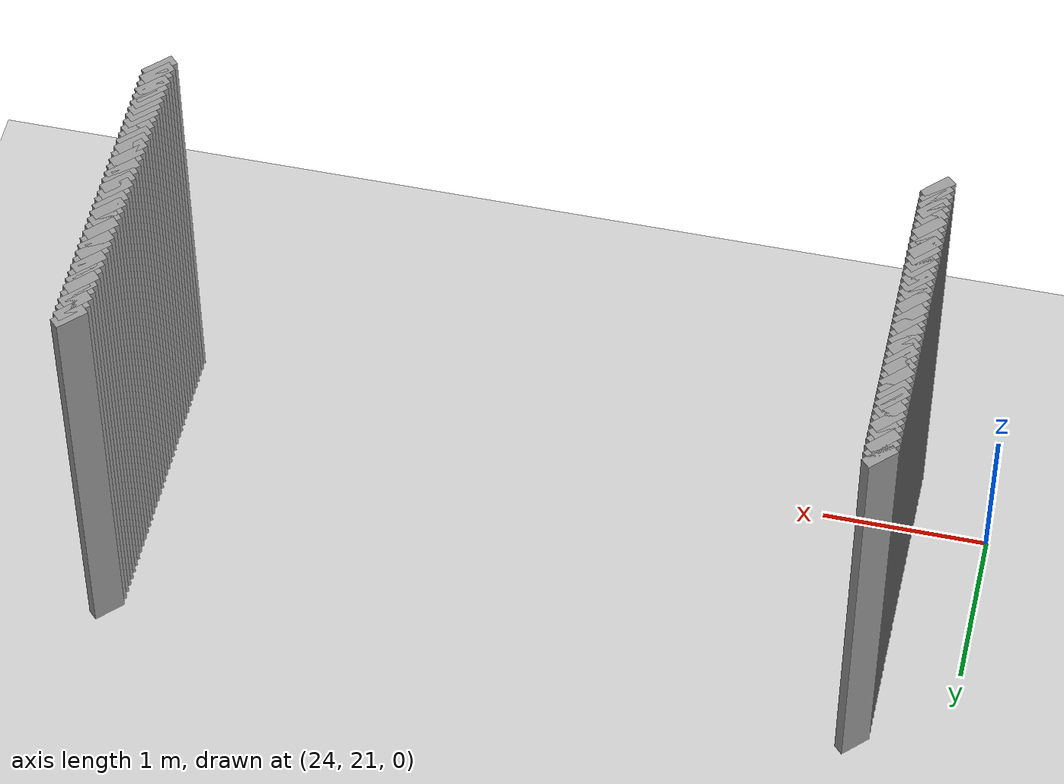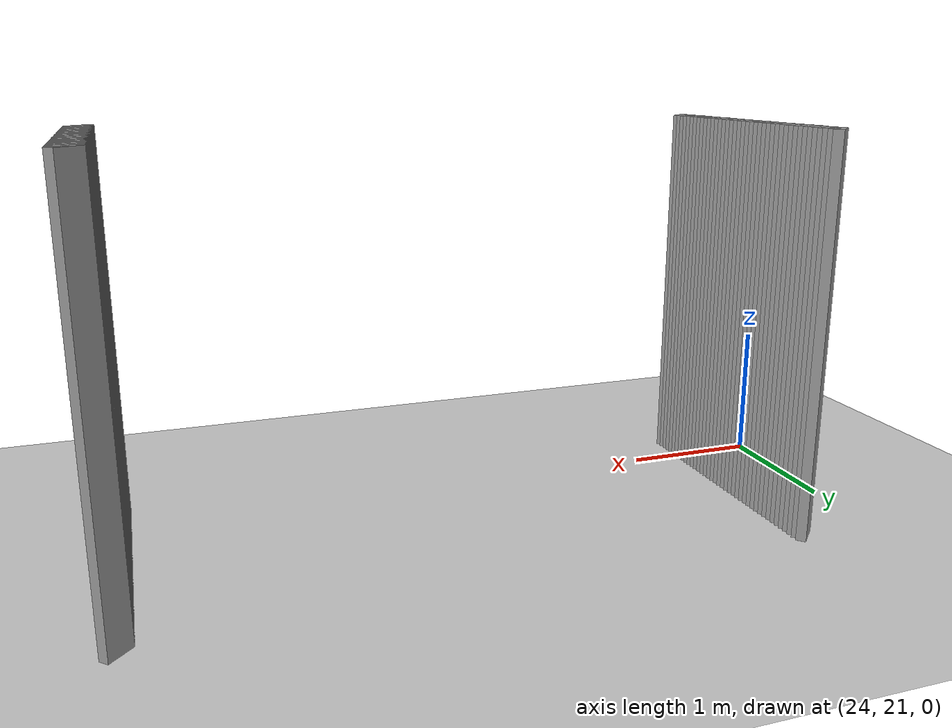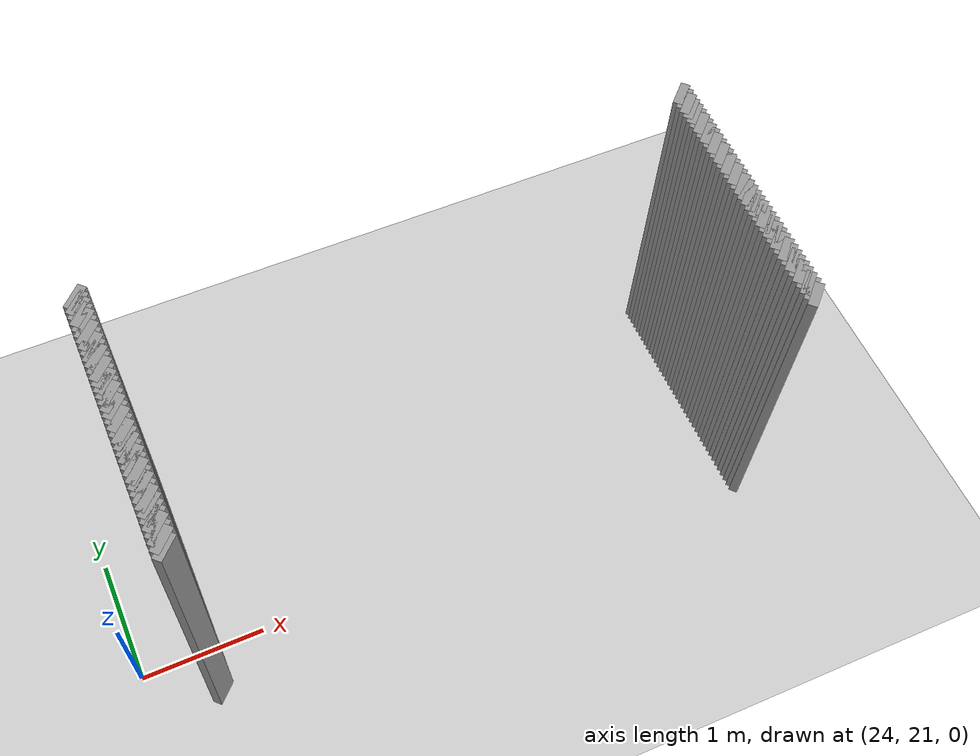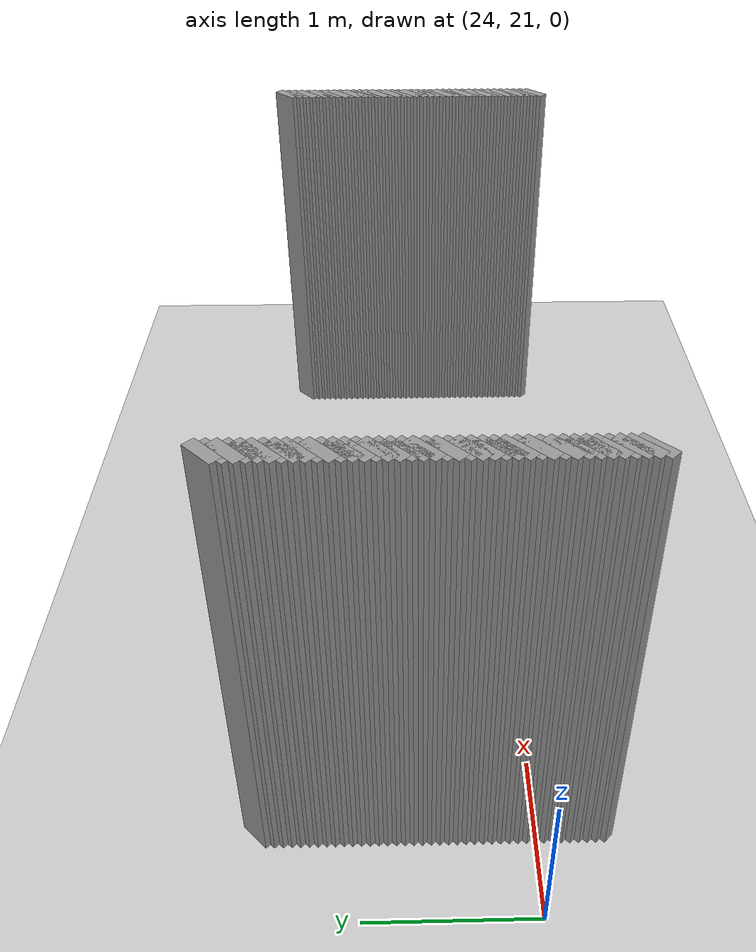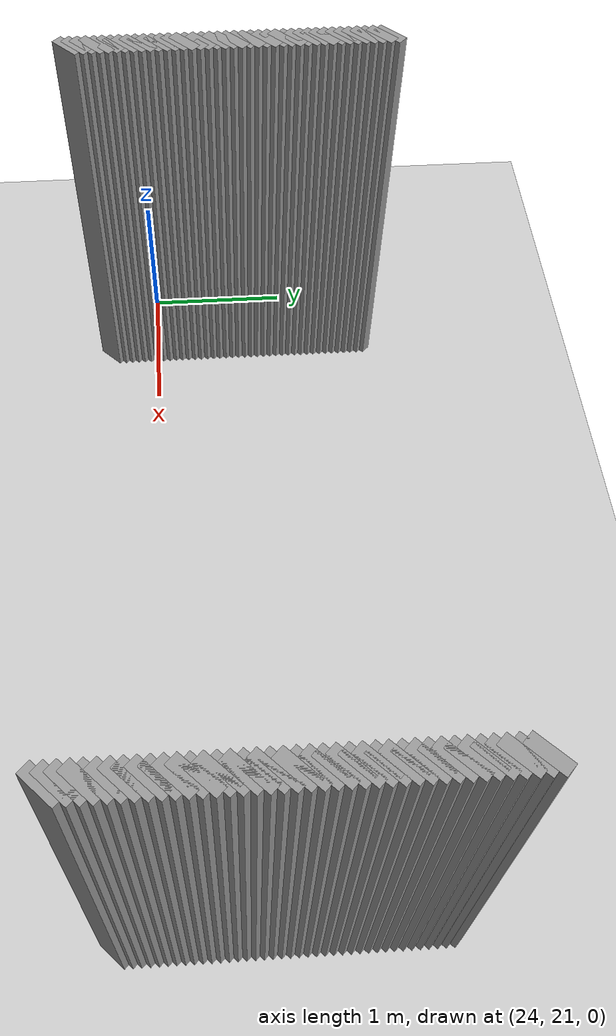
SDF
<sdf version="1.5">
 <world name="default">
  <include><uri>model://ground_plane</uri></include>
  <include><uri>model://sun</uri></include>
  <model name="grey_wall_159">
   <static>1</static>
   <link name="link">
    <pose>24.55 22.6  1.4 0 0 -0.785398163397</pose>
    <collision name="collision"><geometry><box><size>0.0707106781187 .2  2.8</size></box></geometry></collision>
    <visual name="visual">
     <cast_shadows>0</cast_shadows>
     <geometry><box><size>0.0707106781187 .2  2.8</size></box></geometry>
     <material>
      <script>
       <uri>model://grey_wall/materials/scripts</uri>
       <uri>model://grey_wall/materials/textures</uri>
       <name>vrc/grey_wall</name>
      </script>
     </material>
    </visual>
   </link>
  </model>
  <model name="grey_wall_160">
   <static>1</static>
   <link name="link">
    <pose>29.1 22.6  1.4 0 0 -0.785398163397</pose>
    <collision name="collision"><geometry><box><size>0.0707106781187 .2  2.8</size></box></geometry></collision>
    <visual name="visual">
     <cast_shadows>0</cast_shadows>
     <geometry><box><size>0.0707106781187 .2  2.8</size></box></geometry>
     <material>
      <script>
       <uri>model://grey_wall/materials/scripts</uri>
       <uri>model://grey_wall/materials/textures</uri>
       <name>vrc/grey_wall</name>
      </script>
     </material>
    </visual>
   </link>
  </model>
  <model name="grey_wall_161">
   <static>1</static>
   <link name="link">
    <pose>24.55 22.55  1.4 0 0 -0.785398163397</pose>
    <collision name="collision"><geometry><box><size>0.0707106781187 .2  2.8</size></box></geometry></collision>
    <visual name="visual">
     <cast_shadows>0</cast_shadows>
     <geometry><box><size>0.0707106781187 .2  2.8</size></box></geometry>
     <material>
      <script>
       <uri>model://grey_wall/materials/scripts</uri>
       <uri>model://grey_wall/materials/textures</uri>
       <name>vrc/grey_wall</name>
      </script>
     </material>
    </visual>
   </link>
  </model>
  <model name="grey_wall_162">
   <static>1</static>
   <link name="link">
    <pose>29.1 22.55  1.4 0 0 -0.785398163397</pose>
    <collision name="collision"><geometry><box><size>0.0707106781187 .2  2.8</size></box></geometry></collision>
    <visual name="visual">
     <cast_shadows>0</cast_shadows>
     <geometry><box><size>0.0707106781187 .2  2.8</size></box></geometry>
     <material>
      <script>
       <uri>model://grey_wall/materials/scripts</uri>
       <uri>model://grey_wall/materials/textures</uri>
       <name>vrc/grey_wall</name>
      </script>
     </material>
    </visual>
   </link>
  </model>
  <model name="grey_wall_163">
   <static>1</static>
   <link name="link">
    <pose>24.55 22.5  1.4 0 0 -0.785398163397</pose>
    <collision name="collision"><geometry><box><size>0.0707106781187 .2  2.8</size></box></geometry></collision>
    <visual name="visual">
     <cast_shadows>0</cast_shadows>
     <geometry><box><size>0.0707106781187 .2  2.8</size></box></geometry>
     <material>
      <script>
       <uri>model://grey_wall/materials/scripts</uri>
       <uri>model://grey_wall/materials/textures</uri>
       <name>vrc/grey_wall</name>
      </script>
     </material>
    </visual>
   </link>
  </model>
  <model name="grey_wall_164">
   <static>1</static>
   <link name="link">
    <pose>29.1 22.5  1.4 0 0 -0.785398163397</pose>
    <collision name="collision"><geometry><box><size>0.0707106781187 .2  2.8</size></box></geometry></collision>
    <visual name="visual">
     <cast_shadows>0</cast_shadows>
     <geometry><box><size>0.0707106781187 .2  2.8</size></box></geometry>
     <material>
      <script>
       <uri>model://grey_wall/materials/scripts</uri>
       <uri>model://grey_wall/materials/textures</uri>
       <name>vrc/grey_wall</name>
      </script>
     </material>
    </visual>
   </link>
  </model>
  <model name="grey_wall_165">
   <static>1</static>
   <link name="link">
    <pose>24.55 22.45  1.4 0 0 -0.785398163397</pose>
    <collision name="collision"><geometry><box><size>0.0707106781187 .2  2.8</size></box></geometry></collision>
    <visual name="visual">
     <cast_shadows>0</cast_shadows>
     <geometry><box><size>0.0707106781187 .2  2.8</size></box></geometry>
     <material>
      <script>
       <uri>model://grey_wall/materials/scripts</uri>
       <uri>model://grey_wall/materials/textures</uri>
       <name>vrc/grey_wall</name>
      </script>
     </material>
    </visual>
   </link>
  </model>
  <model name="grey_wall_166">
   <static>1</static>
   <link name="link">
    <pose>29.1 22.45  1.4 0 0 -0.785398163397</pose>
    <collision name="collision"><geometry><box><size>0.0707106781187 .2  2.8</size></box></geometry></collision>
    <visual name="visual">
     <cast_shadows>0</cast_shadows>
     <geometry><box><size>0.0707106781187 .2  2.8</size></box></geometry>
     <material>
      <script>
       <uri>model://grey_wall/materials/scripts</uri>
       <uri>model://grey_wall/materials/textures</uri>
       <name>vrc/grey_wall</name>
      </script>
     </material>
    </visual>
   </link>
  </model>
  <model name="grey_wall_167">
   <static>1</static>
   <link name="link">
    <pose>24.55 22.4  1.4 0 0 -0.785398163397</pose>
    <collision name="collision"><geometry><box><size>0.0707106781187 .2  2.8</size></box></geometry></collision>
    <visual name="visual">
     <cast_shadows>0</cast_shadows>
     <geometry><box><size>0.0707106781187 .2  2.8</size></box></geometry>
     <material>
      <script>
       <uri>model://grey_wall/materials/scripts</uri>
       <uri>model://grey_wall/materials/textures</uri>
       <name>vrc/grey_wall</name>
      </script>
     </material>
    </visual>
   </link>
  </model>
  <model name="grey_wall_168">
   <static>1</static>
   <link name="link">
    <pose>29.1 22.4  1.4 0 0 -0.785398163397</pose>
    <collision name="collision"><geometry><box><size>0.0707106781187 .2  2.8</size></box></geometry></collision>
    <visual name="visual">
     <cast_shadows>0</cast_shadows>
     <geometry><box><size>0.0707106781187 .2  2.8</size></box></geometry>
     <material>
      <script>
       <uri>model://grey_wall/materials/scripts</uri>
       <uri>model://grey_wall/materials/textures</uri>
       <name>vrc/grey_wall</name>
      </script>
     </material>
    </visual>
   </link>
  </model>
  <model name="grey_wall_169">
   <static>1</static>
   <link name="link">
    <pose>24.55 22.35  1.4 0 0 -0.785398163397</pose>
    <collision name="collision"><geometry><box><size>0.0707106781187 .2  2.8</size></box></geometry></collision>
    <visual name="visual">
     <cast_shadows>0</cast_shadows>
     <geometry><box><size>0.0707106781187 .2  2.8</size></box></geometry>
     <material>
      <script>
       <uri>model://grey_wall/materials/scripts</uri>
       <uri>model://grey_wall/materials/textures</uri>
       <name>vrc/grey_wall</name>
      </script>
     </material>
    </visual>
   </link>
  </model>
  <model name="grey_wall_170">
   <static>1</static>
   <link name="link">
    <pose>29.1 22.35  1.4 0 0 -0.785398163397</pose>
    <collision name="collision"><geometry><box><size>0.0707106781187 .2  2.8</size></box></geometry></collision>
    <visual name="visual">
     <cast_shadows>0</cast_shadows>
     <geometry><box><size>0.0707106781187 .2  2.8</size></box></geometry>
     <material>
      <script>
       <uri>model://grey_wall/materials/scripts</uri>
       <uri>model://grey_wall/materials/textures</uri>
       <name>vrc/grey_wall</name>
      </script>
     </material>
    </visual>
   </link>
  </model>
  <model name="grey_wall_171">
   <static>1</static>
   <link name="link">
    <pose>24.55 22.3  1.4 0 0 -0.785398163397</pose>
    <collision name="collision"><geometry><box><size>0.0707106781187 .2  2.8</size></box></geometry></collision>
    <visual name="visual">
     <cast_shadows>0</cast_shadows>
     <geometry><box><size>0.0707106781187 .2  2.8</size></box></geometry>
     <material>
      <script>
       <uri>model://grey_wall/materials/scripts</uri>
       <uri>model://grey_wall/materials/textures</uri>
       <name>vrc/grey_wall</name>
      </script>
     </material>
    </visual>
   </link>
  </model>
  <model name="grey_wall_172">
   <static>1</static>
   <link name="link">
    <pose>29.1 22.3  1.4 0 0 -0.785398163397</pose>
    <collision name="collision"><geometry><box><size>0.0707106781187 .2  2.8</size></box></geometry></collision>
    <visual name="visual">
     <cast_shadows>0</cast_shadows>
     <geometry><box><size>0.0707106781187 .2  2.8</size></box></geometry>
     <material>
      <script>
       <uri>model://grey_wall/materials/scripts</uri>
       <uri>model://grey_wall/materials/textures</uri>
       <name>vrc/grey_wall</name>
      </script>
     </material>
    </visual>
   </link>
  </model>
  <model name="grey_wall_173">
   <static>1</static>
   <link name="link">
    <pose>24.55 22.25  1.4 0 0 -0.785398163397</pose>
    <collision name="collision"><geometry><box><size>0.0707106781187 .2  2.8</size></box></geometry></collision>
    <visual name="visual">
     <cast_shadows>0</cast_shadows>
     <geometry><box><size>0.0707106781187 .2  2.8</size></box></geometry>
     <material>
      <script>
       <uri>model://grey_wall/materials/scripts</uri>
       <uri>model://grey_wall/materials/textures</uri>
       <name>vrc/grey_wall</name>
      </script>
     </material>
    </visual>
   </link>
  </model>
  <model name="grey_wall_174">
   <static>1</static>
   <link name="link">
    <pose>29.1 22.25  1.4 0 0 -0.785398163397</pose>
    <collision name="collision"><geometry><box><size>0.0707106781187 .2  2.8</size></box></geometry></collision>
    <visual name="visual">
     <cast_shadows>0</cast_shadows>
     <geometry><box><size>0.0707106781187 .2  2.8</size></box></geometry>
     <material>
      <script>
       <uri>model://grey_wall/materials/scripts</uri>
       <uri>model://grey_wall/materials/textures</uri>
       <name>vrc/grey_wall</name>
      </script>
     </material>
    </visual>
   </link>
  </model>
  <model name="grey_wall_175">
   <static>1</static>
   <link name="link">
    <pose>24.55 22.2  1.4 0 0 -0.785398163397</pose>
    <collision name="collision"><geometry><box><size>0.0707106781187 .2  2.8</size></box></geometry></collision>
    <visual name="visual">
     <cast_shadows>0</cast_shadows>
     <geometry><box><size>0.0707106781187 .2  2.8</size></box></geometry>
     <material>
      <script>
       <uri>model://grey_wall/materials/scripts</uri>
       <uri>model://grey_wall/materials/textures</uri>
       <name>vrc/grey_wall</name>
      </script>
     </material>
    </visual>
   </link>
  </model>
  <model name="grey_wall_176">
   <static>1</static>
   <link name="link">
    <pose>29.1 22.2  1.4 0 0 -0.785398163397</pose>
    <collision name="collision"><geometry><box><size>0.0707106781187 .2  2.8</size></box></geometry></collision>
    <visual name="visual">
     <cast_shadows>0</cast_shadows>
     <geometry><box><size>0.0707106781187 .2  2.8</size></box></geometry>
     <material>
      <script>
       <uri>model://grey_wall/materials/scripts</uri>
       <uri>model://grey_wall/materials/textures</uri>
       <name>vrc/grey_wall</name>
      </script>
     </material>
    </visual>
   </link>
  </model>
  <model name="grey_wall_177">
   <static>1</static>
   <link name="link">
    <pose>24.55 22.15  1.4 0 0 -0.785398163397</pose>
    <collision name="collision"><geometry><box><size>0.0707106781187 .2  2.8</size></box></geometry></collision>
    <visual name="visual">
     <cast_shadows>0</cast_shadows>
     <geometry><box><size>0.0707106781187 .2  2.8</size></box></geometry>
     <material>
      <script>
       <uri>model://grey_wall/materials/scripts</uri>
       <uri>model://grey_wall/materials/textures</uri>
       <name>vrc/grey_wall</name>
      </script>
     </material>
    </visual>
   </link>
  </model>
  <model name="grey_wall_178">
   <static>1</static>
   <link name="link">
    <pose>29.1 22.15  1.4 0 0 -0.785398163397</pose>
    <collision name="collision"><geometry><box><size>0.0707106781187 .2  2.8</size></box></geometry></collision>
    <visual name="visual">
     <cast_shadows>0</cast_shadows>
     <geometry><box><size>0.0707106781187 .2  2.8</size></box></geometry>
     <material>
      <script>
       <uri>model://grey_wall/materials/scripts</uri>
       <uri>model://grey_wall/materials/textures</uri>
       <name>vrc/grey_wall</name>
      </script>
     </material>
    </visual>
   </link>
  </model>
  <model name="grey_wall_179">
   <static>1</static>
   <link name="link">
    <pose>24.55 22.1  1.4 0 0 -0.785398163397</pose>
    <collision name="collision"><geometry><box><size>0.0707106781187 .2  2.8</size></box></geometry></collision>
    <visual name="visual">
     <cast_shadows>0</cast_shadows>
     <geometry><box><size>0.0707106781187 .2  2.8</size></box></geometry>
     <material>
      <script>
       <uri>model://grey_wall/materials/scripts</uri>
       <uri>model://grey_wall/materials/textures</uri>
       <name>vrc/grey_wall</name>
      </script>
     </material>
    </visual>
   </link>
  </model>
  <model name="grey_wall_180">
   <static>1</static>
   <link name="link">
    <pose>29.1 22.1  1.4 0 0 -0.785398163397</pose>
    <collision name="collision"><geometry><box><size>0.0707106781187 .2  2.8</size></box></geometry></collision>
    <visual name="visual">
     <cast_shadows>0</cast_shadows>
     <geometry><box><size>0.0707106781187 .2  2.8</size></box></geometry>
     <material>
      <script>
       <uri>model://grey_wall/materials/scripts</uri>
       <uri>model://grey_wall/materials/textures</uri>
       <name>vrc/grey_wall</name>
      </script>
     </material>
    </visual>
   </link>
  </model>
  <model name="grey_wall_181">
   <static>1</static>
   <link name="link">
    <pose>24.55 22.05  1.4 0 0 -0.785398163397</pose>
    <collision name="collision"><geometry><box><size>0.0707106781187 .2  2.8</size></box></geometry></collision>
    <visual name="visual">
     <cast_shadows>0</cast_shadows>
     <geometry><box><size>0.0707106781187 .2  2.8</size></box></geometry>
     <material>
      <script>
       <uri>model://grey_wall/materials/scripts</uri>
       <uri>model://grey_wall/materials/textures</uri>
       <name>vrc/grey_wall</name>
      </script>
     </material>
    </visual>
   </link>
  </model>
  <model name="grey_wall_182">
   <static>1</static>
   <link name="link">
    <pose>29.1 22.05  1.4 0 0 -0.785398163397</pose>
    <collision name="collision"><geometry><box><size>0.0707106781187 .2  2.8</size></box></geometry></collision>
    <visual name="visual">
     <cast_shadows>0</cast_shadows>
     <geometry><box><size>0.0707106781187 .2  2.8</size></box></geometry>
     <material>
      <script>
       <uri>model://grey_wall/materials/scripts</uri>
       <uri>model://grey_wall/materials/textures</uri>
       <name>vrc/grey_wall</name>
      </script>
     </material>
    </visual>
   </link>
  </model>
  <model name="grey_wall_183">
   <static>1</static>
   <link name="link">
    <pose>24.55 22.0  1.4 0 0 -0.785398163397</pose>
    <collision name="collision"><geometry><box><size>0.0707106781187 .2  2.8</size></box></geometry></collision>
    <visual name="visual">
     <cast_shadows>0</cast_shadows>
     <geometry><box><size>0.0707106781187 .2  2.8</size></box></geometry>
     <material>
      <script>
       <uri>model://grey_wall/materials/scripts</uri>
       <uri>model://grey_wall/materials/textures</uri>
       <name>vrc/grey_wall</name>
      </script>
     </material>
    </visual>
   </link>
  </model>
  <model name="grey_wall_184">
   <static>1</static>
   <link name="link">
    <pose>29.1 22.0  1.4 0 0 -0.785398163397</pose>
    <collision name="collision"><geometry><box><size>0.0707106781187 .2  2.8</size></box></geometry></collision>
    <visual name="visual">
     <cast_shadows>0</cast_shadows>
     <geometry><box><size>0.0707106781187 .2  2.8</size></box></geometry>
     <material>
      <script>
       <uri>model://grey_wall/materials/scripts</uri>
       <uri>model://grey_wall/materials/textures</uri>
       <name>vrc/grey_wall</name>
      </script>
     </material>
    </visual>
   </link>
  </model>
  <model name="grey_wall_185">
   <static>1</static>
   <link name="link">
    <pose>24.55 21.95  1.4 0 0 -0.785398163397</pose>
    <collision name="collision"><geometry><box><size>0.0707106781187 .2  2.8</size></box></geometry></collision>
    <visual name="visual">
     <cast_shadows>0</cast_shadows>
     <geometry><box><size>0.0707106781187 .2  2.8</size></box></geometry>
     <material>
      <script>
       <uri>model://grey_wall/materials/scripts</uri>
       <uri>model://grey_wall/materials/textures</uri>
       <name>vrc/grey_wall</name>
      </script>
     </material>
    </visual>
   </link>
  </model>
  <model name="grey_wall_186">
   <static>1</static>
   <link name="link">
    <pose>29.1 21.95  1.4 0 0 -0.785398163397</pose>
    <collision name="collision"><geometry><box><size>0.0707106781187 .2  2.8</size></box></geometry></collision>
    <visual name="visual">
     <cast_shadows>0</cast_shadows>
     <geometry><box><size>0.0707106781187 .2  2.8</size></box></geometry>
     <material>
      <script>
       <uri>model://grey_wall/materials/scripts</uri>
       <uri>model://grey_wall/materials/textures</uri>
       <name>vrc/grey_wall</name>
      </script>
     </material>
    </visual>
   </link>
  </model>
  <model name="grey_wall_187">
   <static>1</static>
   <link name="link">
    <pose>24.55 21.9  1.4 0 0 -0.785398163397</pose>
    <collision name="collision"><geometry><box><size>0.0707106781187 .2  2.8</size></box></geometry></collision>
    <visual name="visual">
     <cast_shadows>0</cast_shadows>
     <geometry><box><size>0.0707106781187 .2  2.8</size></box></geometry>
     <material>
      <script>
       <uri>model://grey_wall/materials/scripts</uri>
       <uri>model://grey_wall/materials/textures</uri>
       <name>vrc/grey_wall</name>
      </script>
     </material>
    </visual>
   </link>
  </model>
  <model name="grey_wall_188">
   <static>1</static>
   <link name="link">
    <pose>29.1 21.9  1.4 0 0 -0.785398163397</pose>
    <collision name="collision"><geometry><box><size>0.0707106781187 .2  2.8</size></box></geometry></collision>
    <visual name="visual">
     <cast_shadows>0</cast_shadows>
     <geometry><box><size>0.0707106781187 .2  2.8</size></box></geometry>
     <material>
      <script>
       <uri>model://grey_wall/materials/scripts</uri>
       <uri>model://grey_wall/materials/textures</uri>
       <name>vrc/grey_wall</name>
      </script>
     </material>
    </visual>
   </link>
  </model>
  <model name="grey_wall_189">
   <static>1</static>
   <link name="link">
    <pose>24.55 21.85  1.4 0 0 -0.785398163397</pose>
    <collision name="collision"><geometry><box><size>0.0707106781187 .2  2.8</size></box></geometry></collision>
    <visual name="visual">
     <cast_shadows>0</cast_shadows>
     <geometry><box><size>0.0707106781187 .2  2.8</size></box></geometry>
     <material>
      <script>
       <uri>model://grey_wall/materials/scripts</uri>
       <uri>model://grey_wall/materials/textures</uri>
       <name>vrc/grey_wall</name>
      </script>
     </material>
    </visual>
   </link>
  </model>
  <model name="grey_wall_190">
   <static>1</static>
   <link name="link">
    <pose>29.1 21.85  1.4 0 0 -0.785398163397</pose>
    <collision name="collision"><geometry><box><size>0.0707106781187 .2  2.8</size></box></geometry></collision>
    <visual name="visual">
     <cast_shadows>0</cast_shadows>
     <geometry><box><size>0.0707106781187 .2  2.8</size></box></geometry>
     <material>
      <script>
       <uri>model://grey_wall/materials/scripts</uri>
       <uri>model://grey_wall/materials/textures</uri>
       <name>vrc/grey_wall</name>
      </script>
     </material>
    </visual>
   </link>
  </model>
  <model name="grey_wall_191">
   <static>1</static>
   <link name="link">
    <pose>24.55 21.8  1.4 0 0 -0.785398163397</pose>
    <collision name="collision"><geometry><box><size>0.0707106781187 .2  2.8</size></box></geometry></collision>
    <visual name="visual">
     <cast_shadows>0</cast_shadows>
     <geometry><box><size>0.0707106781187 .2  2.8</size></box></geometry>
     <material>
      <script>
       <uri>model://grey_wall/materials/scripts</uri>
       <uri>model://grey_wall/materials/textures</uri>
       <name>vrc/grey_wall</name>
      </script>
     </material>
    </visual>
   </link>
  </model>
  <model name="grey_wall_192">
   <static>1</static>
   <link name="link">
    <pose>29.1 21.8  1.4 0 0 -0.785398163397</pose>
    <collision name="collision"><geometry><box><size>0.0707106781187 .2  2.8</size></box></geometry></collision>
    <visual name="visual">
     <cast_shadows>0</cast_shadows>
     <geometry><box><size>0.0707106781187 .2  2.8</size></box></geometry>
     <material>
      <script>
       <uri>model://grey_wall/materials/scripts</uri>
       <uri>model://grey_wall/materials/textures</uri>
       <name>vrc/grey_wall</name>
      </script>
     </material>
    </visual>
   </link>
  </model>
  <model name="grey_wall_193">
   <static>1</static>
   <link name="link">
    <pose>24.55 21.75  1.4 0 0 -0.785398163397</pose>
    <collision name="collision"><geometry><box><size>0.0707106781187 .2  2.8</size></box></geometry></collision>
    <visual name="visual">
     <cast_shadows>0</cast_shadows>
     <geometry><box><size>0.0707106781187 .2  2.8</size></box></geometry>
     <material>
      <script>
       <uri>model://grey_wall/materials/scripts</uri>
       <uri>model://grey_wall/materials/textures</uri>
       <name>vrc/grey_wall</name>
      </script>
     </material>
    </visual>
   </link>
  </model>
  <model name="grey_wall_194">
   <static>1</static>
   <link name="link">
    <pose>29.1 21.75  1.4 0 0 -0.785398163397</pose>
    <collision name="collision"><geometry><box><size>0.0707106781187 .2  2.8</size></box></geometry></collision>
    <visual name="visual">
     <cast_shadows>0</cast_shadows>
     <geometry><box><size>0.0707106781187 .2  2.8</size></box></geometry>
     <material>
      <script>
       <uri>model://grey_wall/materials/scripts</uri>
       <uri>model://grey_wall/materials/textures</uri>
       <name>vrc/grey_wall</name>
      </script>
     </material>
    </visual>
   </link>
  </model>
  <model name="grey_wall_195">
   <static>1</static>
   <link name="link">
    <pose>24.55 21.7  1.4 0 0 -0.785398163397</pose>
    <collision name="collision"><geometry><box><size>0.0707106781187 .2  2.8</size></box></geometry></collision>
    <visual name="visual">
     <cast_shadows>0</cast_shadows>
     <geometry><box><size>0.0707106781187 .2  2.8</size></box></geometry>
     <material>
      <script>
       <uri>model://grey_wall/materials/scripts</uri>
       <uri>model://grey_wall/materials/textures</uri>
       <name>vrc/grey_wall</name>
      </script>
     </material>
    </visual>
   </link>
  </model>
  <model name="grey_wall_196">
   <static>1</static>
   <link name="link">
    <pose>29.1 21.7  1.4 0 0 -0.785398163397</pose>
    <collision name="collision"><geometry><box><size>0.0707106781187 .2  2.8</size></box></geometry></collision>
    <visual name="visual">
     <cast_shadows>0</cast_shadows>
     <geometry><box><size>0.0707106781187 .2  2.8</size></box></geometry>
     <material>
      <script>
       <uri>model://grey_wall/materials/scripts</uri>
       <uri>model://grey_wall/materials/textures</uri>
       <name>vrc/grey_wall</name>
      </script>
     </material>
    </visual>
   </link>
  </model>
  <model name="grey_wall_197">
   <static>1</static>
   <link name="link">
    <pose>24.55 21.65  1.4 0 0 -0.785398163397</pose>
    <collision name="collision"><geometry><box><size>0.0707106781187 .2  2.8</size></box></geometry></collision>
    <visual name="visual">
     <cast_shadows>0</cast_shadows>
     <geometry><box><size>0.0707106781187 .2  2.8</size></box></geometry>
     <material>
      <script>
       <uri>model://grey_wall/materials/scripts</uri>
       <uri>model://grey_wall/materials/textures</uri>
       <name>vrc/grey_wall</name>
      </script>
     </material>
    </visual>
   </link>
  </model>
  <model name="grey_wall_198">
   <static>1</static>
   <link name="link">
    <pose>29.1 21.65  1.4 0 0 -0.785398163397</pose>
    <collision name="collision"><geometry><box><size>0.0707106781187 .2  2.8</size></box></geometry></collision>
    <visual name="visual">
     <cast_shadows>0</cast_shadows>
     <geometry><box><size>0.0707106781187 .2  2.8</size></box></geometry>
     <material>
      <script>
       <uri>model://grey_wall/materials/scripts</uri>
       <uri>model://grey_wall/materials/textures</uri>
       <name>vrc/grey_wall</name>
      </script>
     </material>
    </visual>
   </link>
  </model>
  <model name="grey_wall_199">
   <static>1</static>
   <link name="link">
    <pose>24.55 21.6  1.4 0 0 -0.785398163397</pose>
    <collision name="collision"><geometry><box><size>0.0707106781187 .2  2.8</size></box></geometry></collision>
    <visual name="visual">
     <cast_shadows>0</cast_shadows>
     <geometry><box><size>0.0707106781187 .2  2.8</size></box></geometry>
     <material>
      <script>
       <uri>model://grey_wall/materials/scripts</uri>
       <uri>model://grey_wall/materials/textures</uri>
       <name>vrc/grey_wall</name>
      </script>
     </material>
    </visual>
   </link>
  </model>
  <model name="grey_wall_200">
   <static>1</static>
   <link name="link">
    <pose>29.1 21.6  1.4 0 0 -0.785398163397</pose>
    <collision name="collision"><geometry><box><size>0.0707106781187 .2  2.8</size></box></geometry></collision>
    <visual name="visual">
     <cast_shadows>0</cast_shadows>
     <geometry><box><size>0.0707106781187 .2  2.8</size></box></geometry>
     <material>
      <script>
       <uri>model://grey_wall/materials/scripts</uri>
       <uri>model://grey_wall/materials/textures</uri>
       <name>vrc/grey_wall</name>
      </script>
     </material>
    </visual>
   </link>
  </model>
  <model name="grey_wall_201">
   <static>1</static>
   <link name="link">
    <pose>24.55 21.55  1.4 0 0 -0.785398163397</pose>
    <collision name="collision"><geometry><box><size>0.0707106781187 .2  2.8</size></box></geometry></collision>
    <visual name="visual">
     <cast_shadows>0</cast_shadows>
     <geometry><box><size>0.0707106781187 .2  2.8</size></box></geometry>
     <material>
      <script>
       <uri>model://grey_wall/materials/scripts</uri>
       <uri>model://grey_wall/materials/textures</uri>
       <name>vrc/grey_wall</name>
      </script>
     </material>
    </visual>
   </link>
  </model>
  <model name="grey_wall_202">
   <static>1</static>
   <link name="link">
    <pose>29.1 21.55  1.4 0 0 -0.785398163397</pose>
    <collision name="collision"><geometry><box><size>0.0707106781187 .2  2.8</size></box></geometry></collision>
    <visual name="visual">
     <cast_shadows>0</cast_shadows>
     <geometry><box><size>0.0707106781187 .2  2.8</size></box></geometry>
     <material>
      <script>
       <uri>model://grey_wall/materials/scripts</uri>
       <uri>model://grey_wall/materials/textures</uri>
       <name>vrc/grey_wall</name>
      </script>
     </material>
    </visual>
   </link>
  </model>
  <model name="grey_wall_203">
   <static>1</static>
   <link name="link">
    <pose>24.55 21.5  1.4 0 0 -0.785398163397</pose>
    <collision name="collision"><geometry><box><size>0.0707106781187 .2  2.8</size></box></geometry></collision>
    <visual name="visual">
     <cast_shadows>0</cast_shadows>
     <geometry><box><size>0.0707106781187 .2  2.8</size></box></geometry>
     <material>
      <script>
       <uri>model://grey_wall/materials/scripts</uri>
       <uri>model://grey_wall/materials/textures</uri>
       <name>vrc/grey_wall</name>
      </script>
     </material>
    </visual>
   </link>
  </model>
  <model name="grey_wall_204">
   <static>1</static>
   <link name="link">
    <pose>29.1 21.5  1.4 0 0 -0.785398163397</pose>
    <collision name="collision"><geometry><box><size>0.0707106781187 .2  2.8</size></box></geometry></collision>
    <visual name="visual">
     <cast_shadows>0</cast_shadows>
     <geometry><box><size>0.0707106781187 .2  2.8</size></box></geometry>
     <material>
      <script>
       <uri>model://grey_wall/materials/scripts</uri>
       <uri>model://grey_wall/materials/textures</uri>
       <name>vrc/grey_wall</name>
      </script>
     </material>
    </visual>
   </link>
  </model>
  <model name="grey_wall_205">
   <static>1</static>
   <link name="link">
    <pose>24.55 21.45  1.4 0 0 -0.785398163397</pose>
    <collision name="collision"><geometry><box><size>0.0707106781187 .2  2.8</size></box></geometry></collision>
    <visual name="visual">
     <cast_shadows>0</cast_shadows>
     <geometry><box><size>0.0707106781187 .2  2.8</size></box></geometry>
     <material>
      <script>
       <uri>model://grey_wall/materials/scripts</uri>
       <uri>model://grey_wall/materials/textures</uri>
       <name>vrc/grey_wall</name>
      </script>
     </material>
    </visual>
   </link>
  </model>
  <model name="grey_wall_206">
   <static>1</static>
   <link name="link">
    <pose>29.1 21.45  1.4 0 0 -0.785398163397</pose>
    <collision name="collision"><geometry><box><size>0.0707106781187 .2  2.8</size></box></geometry></collision>
    <visual name="visual">
     <cast_shadows>0</cast_shadows>
     <geometry><box><size>0.0707106781187 .2  2.8</size></box></geometry>
     <material>
      <script>
       <uri>model://grey_wall/materials/scripts</uri>
       <uri>model://grey_wall/materials/textures</uri>
       <name>vrc/grey_wall</name>
      </script>
     </material>
    </visual>
   </link>
  </model>
  <model name="grey_wall_207">
   <static>1</static>
   <link name="link">
    <pose>24.55 21.4  1.4 0 0 -0.785398163397</pose>
    <collision name="collision"><geometry><box><size>0.0707106781187 .2  2.8</size></box></geometry></collision>
    <visual name="visual">
     <cast_shadows>0</cast_shadows>
     <geometry><box><size>0.0707106781187 .2  2.8</size></box></geometry>
     <material>
      <script>
       <uri>model://grey_wall/materials/scripts</uri>
       <uri>model://grey_wall/materials/textures</uri>
       <name>vrc/grey_wall</name>
      </script>
     </material>
    </visual>
   </link>
  </model>
  <model name="grey_wall_208">
   <static>1</static>
   <link name="link">
    <pose>29.1 21.4  1.4 0 0 -0.785398163397</pose>
    <collision name="collision"><geometry><box><size>0.0707106781187 .2  2.8</size></box></geometry></collision>
    <visual name="visual">
     <cast_shadows>0</cast_shadows>
     <geometry><box><size>0.0707106781187 .2  2.8</size></box></geometry>
     <material>
      <script>
       <uri>model://grey_wall/materials/scripts</uri>
       <uri>model://grey_wall/materials/textures</uri>
       <name>vrc/grey_wall</name>
      </script>
     </material>
    </visual>
   </link>
  </model>
  <model name="grey_wall_209">
   <static>1</static>
   <link name="link">
    <pose>24.55 21.35  1.4 0 0 -0.785398163397</pose>
    <collision name="collision"><geometry><box><size>0.0707106781187 .2  2.8</size></box></geometry></collision>
    <visual name="visual">
     <cast_shadows>0</cast_shadows>
     <geometry><box><size>0.0707106781187 .2  2.8</size></box></geometry>
     <material>
      <script>
       <uri>model://grey_wall/materials/scripts</uri>
       <uri>model://grey_wall/materials/textures</uri>
       <name>vrc/grey_wall</name>
      </script>
     </material>
    </visual>
   </link>
  </model>
  <model name="grey_wall_210">
   <static>1</static>
   <link name="link">
    <pose>29.1 21.35  1.4 0 0 -0.785398163397</pose>
    <collision name="collision"><geometry><box><size>0.0707106781187 .2  2.8</size></box></geometry></collision>
    <visual name="visual">
     <cast_shadows>0</cast_shadows>
     <geometry><box><size>0.0707106781187 .2  2.8</size></box></geometry>
     <material>
      <script>
       <uri>model://grey_wall/materials/scripts</uri>
       <uri>model://grey_wall/materials/textures</uri>
       <name>vrc/grey_wall</name>
      </script>
     </material>
    </visual>
   </link>
  </model>
  <model name="grey_wall_211">
   <static>1</static>
   <link name="link">
    <pose>24.55 21.3  1.4 0 0 -0.785398163397</pose>
    <collision name="collision"><geometry><box><size>0.0707106781187 .2  2.8</size></box></geometry></collision>
    <visual name="visual">
     <cast_shadows>0</cast_shadows>
     <geometry><box><size>0.0707106781187 .2  2.8</size></box></geometry>
     <material>
      <script>
       <uri>model://grey_wall/materials/scripts</uri>
       <uri>model://grey_wall/materials/textures</uri>
       <name>vrc/grey_wall</name>
      </script>
     </material>
    </visual>
   </link>
  </model>
  <model name="grey_wall_212">
   <static>1</static>
   <link name="link">
    <pose>29.1 21.3  1.4 0 0 -0.785398163397</pose>
    <collision name="collision"><geometry><box><size>0.0707106781187 .2  2.8</size></box></geometry></collision>
    <visual name="visual">
     <cast_shadows>0</cast_shadows>
     <geometry><box><size>0.0707106781187 .2  2.8</size></box></geometry>
     <material>
      <script>
       <uri>model://grey_wall/materials/scripts</uri>
       <uri>model://grey_wall/materials/textures</uri>
       <name>vrc/grey_wall</name>
      </script>
     </material>
    </visual>
   </link>
  </model>
  <model name="grey_wall_213">
   <static>1</static>
   <link name="link">
    <pose>24.55 21.25  1.4 0 0 -0.785398163397</pose>
    <collision name="collision"><geometry><box><size>0.0707106781187 .2  2.8</size></box></geometry></collision>
    <visual name="visual">
     <cast_shadows>0</cast_shadows>
     <geometry><box><size>0.0707106781187 .2  2.8</size></box></geometry>
     <material>
      <script>
       <uri>model://grey_wall/materials/scripts</uri>
       <uri>model://grey_wall/materials/textures</uri>
       <name>vrc/grey_wall</name>
      </script>
     </material>
    </visual>
   </link>
  </model>
  <model name="grey_wall_214">
   <static>1</static>
   <link name="link">
    <pose>29.1 21.25  1.4 0 0 -0.785398163397</pose>
    <collision name="collision"><geometry><box><size>0.0707106781187 .2  2.8</size></box></geometry></collision>
    <visual name="visual">
     <cast_shadows>0</cast_shadows>
     <geometry><box><size>0.0707106781187 .2  2.8</size></box></geometry>
     <material>
      <script>
       <uri>model://grey_wall/materials/scripts</uri>
       <uri>model://grey_wall/materials/textures</uri>
       <name>vrc/grey_wall</name>
      </script>
     </material>
    </visual>
   </link>
  </model>
  <model name="grey_wall_215">
   <static>1</static>
   <link name="link">
    <pose>24.55 21.2  1.4 0 0 -0.785398163397</pose>
    <collision name="collision"><geometry><box><size>0.0707106781187 .2  2.8</size></box></geometry></collision>
    <visual name="visual">
     <cast_shadows>0</cast_shadows>
     <geometry><box><size>0.0707106781187 .2  2.8</size></box></geometry>
     <material>
      <script>
       <uri>model://grey_wall/materials/scripts</uri>
       <uri>model://grey_wall/materials/textures</uri>
       <name>vrc/grey_wall</name>
      </script>
     </material>
    </visual>
   </link>
  </model>
  <model name="grey_wall_216">
   <static>1</static>
   <link name="link">
    <pose>29.1 21.2  1.4 0 0 -0.785398163397</pose>
    <collision name="collision"><geometry><box><size>0.0707106781187 .2  2.8</size></box></geometry></collision>
    <visual name="visual">
     <cast_shadows>0</cast_shadows>
     <geometry><box><size>0.0707106781187 .2  2.8</size></box></geometry>
     <material>
      <script>
       <uri>model://grey_wall/materials/scripts</uri>
       <uri>model://grey_wall/materials/textures</uri>
       <name>vrc/grey_wall</name>
      </script>
     </material>
    </visual>
   </link>
  </model>
  <model name="grey_wall_217">
   <static>1</static>
   <link name="link">
    <pose>24.55 21.15  1.4 0 0 -0.785398163397</pose>
    <collision name="collision"><geometry><box><size>0.0707106781187 .2  2.8</size></box></geometry></collision>
    <visual name="visual">
     <cast_shadows>0</cast_shadows>
     <geometry><box><size>0.0707106781187 .2  2.8</size></box></geometry>
     <material>
      <script>
       <uri>model://grey_wall/materials/scripts</uri>
       <uri>model://grey_wall/materials/textures</uri>
       <name>vrc/grey_wall</name>
      </script>
     </material>
    </visual>
   </link>
  </model>
  <model name="grey_wall_218">
   <static>1</static>
   <link name="link">
    <pose>29.1 21.15  1.4 0 0 -0.785398163397</pose>
    <collision name="collision"><geometry><box><size>0.0707106781187 .2  2.8</size></box></geometry></collision>
    <visual name="visual">
     <cast_shadows>0</cast_shadows>
     <geometry><box><size>0.0707106781187 .2  2.8</size></box></geometry>
     <material>
      <script>
       <uri>model://grey_wall/materials/scripts</uri>
       <uri>model://grey_wall/materials/textures</uri>
       <name>vrc/grey_wall</name>
      </script>
     </material>
    </visual>
   </link>
  </model>
  <model name="grey_wall_219">
   <static>1</static>
   <link name="link">
    <pose>24.55 21.1  1.4 0 0 -0.785398163397</pose>
    <collision name="collision"><geometry><box><size>0.0707106781187 .2  2.8</size></box></geometry></collision>
    <visual name="visual">
     <cast_shadows>0</cast_shadows>
     <geometry><box><size>0.0707106781187 .2  2.8</size></box></geometry>
     <material>
      <script>
       <uri>model://grey_wall/materials/scripts</uri>
       <uri>model://grey_wall/materials/textures</uri>
       <name>vrc/grey_wall</name>
      </script>
     </material>
    </visual>
   </link>
  </model>
  <model name="grey_wall_220">
   <static>1</static>
   <link name="link">
    <pose>29.1 21.1  1.4 0 0 -0.785398163397</pose>
    <collision name="collision"><geometry><box><size>0.0707106781187 .2  2.8</size></box></geometry></collision>
    <visual name="visual">
     <cast_shadows>0</cast_shadows>
     <geometry><box><size>0.0707106781187 .2  2.8</size></box></geometry>
     <material>
      <script>
       <uri>model://grey_wall/materials/scripts</uri>
       <uri>model://grey_wall/materials/textures</uri>
       <name>vrc/grey_wall</name>
      </script>
     </material>
    </visual>
   </link>
  </model>
  <model name="grey_wall_221">
   <static>1</static>
   <link name="link">
    <pose>24.55 21.05  1.4 0 0 -0.785398163397</pose>
    <collision name="collision"><geometry><box><size>0.0707106781187 .2  2.8</size></box></geometry></collision>
    <visual name="visual">
     <cast_shadows>0</cast_shadows>
     <geometry><box><size>0.0707106781187 .2  2.8</size></box></geometry>
     <material>
      <script>
       <uri>model://grey_wall/materials/scripts</uri>
       <uri>model://grey_wall/materials/textures</uri>
       <name>vrc/grey_wall</name>
      </script>
     </material>
    </visual>
   </link>
  </model>
  <model name="grey_wall_222">
   <static>1</static>
   <link name="link">
    <pose>29.1 21.05  1.4 0 0 -0.785398163397</pose>
    <collision name="collision"><geometry><box><size>0.0707106781187 .2  2.8</size></box></geometry></collision>
    <visual name="visual">
     <cast_shadows>0</cast_shadows>
     <geometry><box><size>0.0707106781187 .2  2.8</size></box></geometry>
     <material>
      <script>
       <uri>model://grey_wall/materials/scripts</uri>
       <uri>model://grey_wall/materials/textures</uri>
       <name>vrc/grey_wall</name>
      </script>
     </material>
    </visual>
   </link>
  </model>
  <model name="grey_wall_223">
   <static>1</static>
   <link name="link">
    <pose>24.55 21.0  1.4 0 0 -0.785398163397</pose>
    <collision name="collision"><geometry><box><size>0.0707106781187 .2  2.8</size></box></geometry></collision>
    <visual name="visual">
     <cast_shadows>0</cast_shadows>
     <geometry><box><size>0.0707106781187 .2  2.8</size></box></geometry>
     <material>
      <script>
       <uri>model://grey_wall/materials/scripts</uri>
       <uri>model://grey_wall/materials/textures</uri>
       <name>vrc/grey_wall</name>
      </script>
     </material>
    </visual>
   </link>
  </model>
  <model name="grey_wall_224">
   <static>1</static>
   <link name="link">
    <pose>29.1 21.0  1.4 0 0 -0.785398163397</pose>
    <collision name="collision"><geometry><box><size>0.0707106781187 .2  2.8</size></box></geometry></collision>
    <visual name="visual">
     <cast_shadows>0</cast_shadows>
     <geometry><box><size>0.0707106781187 .2  2.8</size></box></geometry>
     <material>
      <script>
       <uri>model://grey_wall/materials/scripts</uri>
       <uri>model://grey_wall/materials/textures</uri>
       <name>vrc/grey_wall</name>
      </script>
     </material>
    </visual>
   </link>
  </model>
  <model name="grey_wall_225">
   <static>1</static>
   <link name="link">
    <pose>24.55 20.95  1.4 0 0 -0.785398163397</pose>
    <collision name="collision"><geometry><box><size>0.0707106781187 .2  2.8</size></box></geometry></collision>
    <visual name="visual">
     <cast_shadows>0</cast_shadows>
     <geometry><box><size>0.0707106781187 .2  2.8</size></box></geometry>
     <material>
      <script>
       <uri>model://grey_wall/materials/scripts</uri>
       <uri>model://grey_wall/materials/textures</uri>
       <name>vrc/grey_wall</name>
      </script>
     </material>
    </visual>
   </link>
  </model>
  <model name="grey_wall_226">
   <static>1</static>
   <link name="link">
    <pose>29.1 20.95  1.4 0 0 -0.785398163397</pose>
    <collision name="collision"><geometry><box><size>0.0707106781187 .2  2.8</size></box></geometry></collision>
    <visual name="visual">
     <cast_shadows>0</cast_shadows>
     <geometry><box><size>0.0707106781187 .2  2.8</size></box></geometry>
     <material>
      <script>
       <uri>model://grey_wall/materials/scripts</uri>
       <uri>model://grey_wall/materials/textures</uri>
       <name>vrc/grey_wall</name>
      </script>
     </material>
    </visual>
   </link>
  </model>
  <model name="grey_wall_227">
   <static>1</static>
   <link name="link">
    <pose>24.55 20.9  1.4 0 0 -0.785398163397</pose>
    <collision name="collision"><geometry><box><size>0.0707106781187 .2  2.8</size></box></geometry></collision>
    <visual name="visual">
     <cast_shadows>0</cast_shadows>
     <geometry><box><size>0.0707106781187 .2  2.8</size></box></geometry>
     <material>
      <script>
       <uri>model://grey_wall/materials/scripts</uri>
       <uri>model://grey_wall/materials/textures</uri>
       <name>vrc/grey_wall</name>
      </script>
     </material>
    </visual>
   </link>
  </model>
  <model name="grey_wall_228">
   <static>1</static>
   <link name="link">
    <pose>29.1 20.9  1.4 0 0 -0.785398163397</pose>
    <collision name="collision"><geometry><box><size>0.0707106781187 .2  2.8</size></box></geometry></collision>
    <visual name="visual">
     <cast_shadows>0</cast_shadows>
     <geometry><box><size>0.0707106781187 .2  2.8</size></box></geometry>
     <material>
      <script>
       <uri>model://grey_wall/materials/scripts</uri>
       <uri>model://grey_wall/materials/textures</uri>
       <name>vrc/grey_wall</name>
      </script>
     </material>
    </visual>
   </link>
  </model>
  <model name="grey_wall_229">
   <static>1</static>
   <link name="link">
    <pose>24.55 20.85  1.4 0 0 -0.785398163397</pose>
    <collision name="collision"><geometry><box><size>0.0707106781187 .2  2.8</size></box></geometry></collision>
    <visual name="visual">
     <cast_shadows>0</cast_shadows>
     <geometry><box><size>0.0707106781187 .2  2.8</size></box></geometry>
     <material>
      <script>
       <uri>model://grey_wall/materials/scripts</uri>
       <uri>model://grey_wall/materials/textures</uri>
       <name>vrc/grey_wall</name>
      </script>
     </material>
    </visual>
   </link>
  </model>
  <model name="grey_wall_230">
   <static>1</static>
   <link name="link">
    <pose>29.1 20.85  1.4 0 0 -0.785398163397</pose>
    <collision name="collision"><geometry><box><size>0.0707106781187 .2  2.8</size></box></geometry></collision>
    <visual name="visual">
     <cast_shadows>0</cast_shadows>
     <geometry><box><size>0.0707106781187 .2  2.8</size></box></geometry>
     <material>
      <script>
       <uri>model://grey_wall/materials/scripts</uri>
       <uri>model://grey_wall/materials/textures</uri>
       <name>vrc/grey_wall</name>
      </script>
     </material>
    </visual>
   </link>
  </model>
  <model name="grey_wall_231">
   <static>1</static>
   <link name="link">
    <pose>24.55 20.8  1.4 0 0 -0.785398163397</pose>
    <collision name="collision"><geometry><box><size>0.0707106781187 .2  2.8</size></box></geometry></collision>
    <visual name="visual">
     <cast_shadows>0</cast_shadows>
     <geometry><box><size>0.0707106781187 .2  2.8</size></box></geometry>
     <material>
      <script>
       <uri>model://grey_wall/materials/scripts</uri>
       <uri>model://grey_wall/materials/textures</uri>
       <name>vrc/grey_wall</name>
      </script>
     </material>
    </visual>
   </link>
  </model>
  <model name="grey_wall_232">
   <static>1</static>
   <link name="link">
    <pose>29.1 20.8  1.4 0 0 -0.785398163397</pose>
    <collision name="collision"><geometry><box><size>0.0707106781187 .2  2.8</size></box></geometry></collision>
    <visual name="visual">
     <cast_shadows>0</cast_shadows>
     <geometry><box><size>0.0707106781187 .2  2.8</size></box></geometry>
     <material>
      <script>
       <uri>model://grey_wall/materials/scripts</uri>
       <uri>model://grey_wall/materials/textures</uri>
       <name>vrc/grey_wall</name>
      </script>
     </material>
    </visual>
   </link>
  </model>
  <model name="grey_wall_233">
   <static>1</static>
   <link name="link">
    <pose>24.55 20.75  1.4 0 0 -0.785398163397</pose>
    <collision name="collision"><geometry><box><size>0.0707106781187 .2  2.8</size></box></geometry></collision>
    <visual name="visual">
     <cast_shadows>0</cast_shadows>
     <geometry><box><size>0.0707106781187 .2  2.8</size></box></geometry>
     <material>
      <script>
       <uri>model://grey_wall/materials/scripts</uri>
       <uri>model://grey_wall/materials/textures</uri>
       <name>vrc/grey_wall</name>
      </script>
     </material>
    </visual>
   </link>
  </model>
  <model name="grey_wall_234">
   <static>1</static>
   <link name="link">
    <pose>29.1 20.75  1.4 0 0 -0.785398163397</pose>
    <collision name="collision"><geometry><box><size>0.0707106781187 .2  2.8</size></box></geometry></collision>
    <visual name="visual">
     <cast_shadows>0</cast_shadows>
     <geometry><box><size>0.0707106781187 .2  2.8</size></box></geometry>
     <material>
      <script>
       <uri>model://grey_wall/materials/scripts</uri>
       <uri>model://grey_wall/materials/textures</uri>
       <name>vrc/grey_wall</name>
      </script>
     </material>
    </visual>
   </link>
  </model>
  <model name="grey_wall_235">
   <static>1</static>
   <link name="link">
    <pose>24.55 20.7  1.4 0 0 -0.785398163397</pose>
    <collision name="collision"><geometry><box><size>0.0707106781187 .2  2.8</size></box></geometry></collision>
    <visual name="visual">
     <cast_shadows>0</cast_shadows>
     <geometry><box><size>0.0707106781187 .2  2.8</size></box></geometry>
     <material>
      <script>
       <uri>model://grey_wall/materials/scripts</uri>
       <uri>model://grey_wall/materials/textures</uri>
       <name>vrc/grey_wall</name>
      </script>
     </material>
    </visual>
   </link>
  </model>
  <model name="grey_wall_236">
   <static>1</static>
   <link name="link">
    <pose>29.1 20.7  1.4 0 0 -0.785398163397</pose>
    <collision name="collision"><geometry><box><size>0.0707106781187 .2  2.8</size></box></geometry></collision>
    <visual name="visual">
     <cast_shadows>0</cast_shadows>
     <geometry><box><size>0.0707106781187 .2  2.8</size></box></geometry>
     <material>
      <script>
       <uri>model://grey_wall/materials/scripts</uri>
       <uri>model://grey_wall/materials/textures</uri>
       <name>vrc/grey_wall</name>
      </script>
     </material>
    </visual>
   </link>
  </model>
  <model name="grey_wall_237">
   <static>1</static>
   <link name="link">
    <pose>24.55 20.65  1.4 0 0 -0.785398163397</pose>
    <collision name="collision"><geometry><box><size>0.0707106781187 .2  2.8</size></box></geometry></collision>
    <visual name="visual">
     <cast_shadows>0</cast_shadows>
     <geometry><box><size>0.0707106781187 .2  2.8</size></box></geometry>
     <material>
      <script>
       <uri>model://grey_wall/materials/scripts</uri>
       <uri>model://grey_wall/materials/textures</uri>
       <name>vrc/grey_wall</name>
      </script>
     </material>
    </visual>
   </link>
  </model>
 </world>
</sdf>
